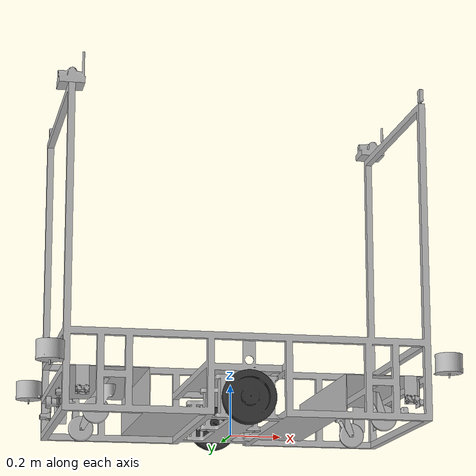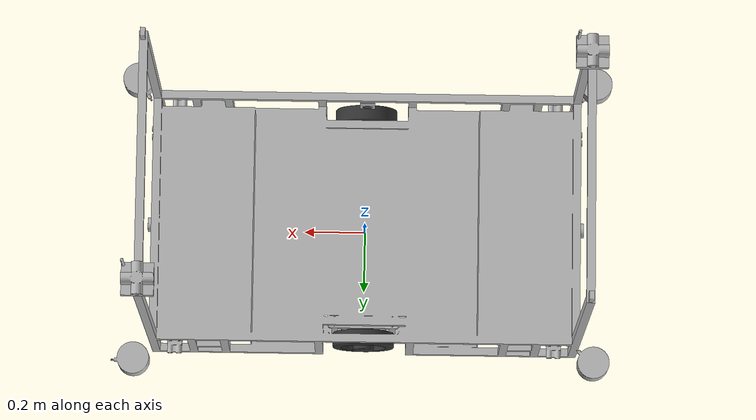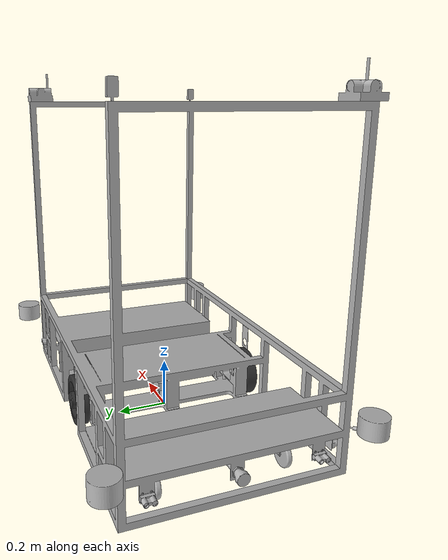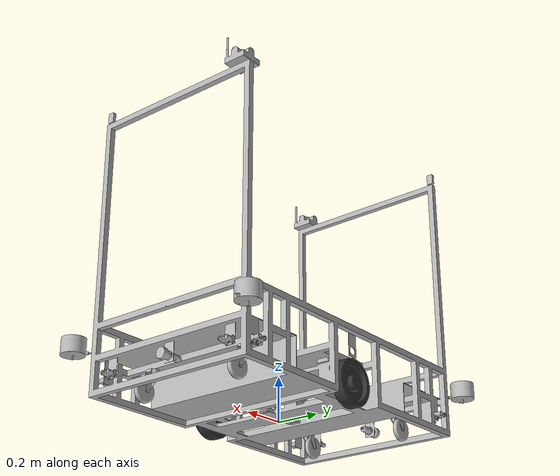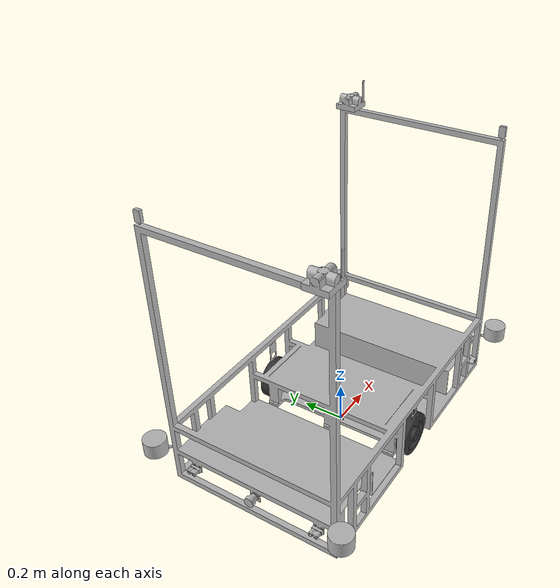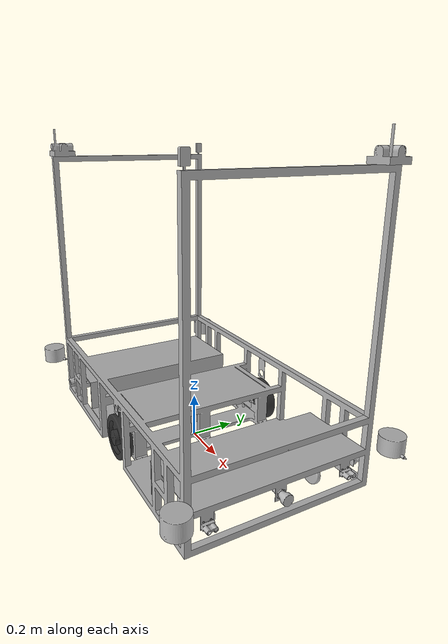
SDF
<sdf version='1.7'>
  <model name='Amr'>
    <link name='Base_Link'>
      <inertial>
        <pose>0.001146 -0.000285 0.281592 0 -0 0</pose>
        <mass>89.323</mass>
        <inertia>
          <ixx>19.1149</ixx>
          <ixy>-1.91693</ixy>
          <ixz>-0.00788105</ixz>
          <iyy>31.6798</iyy>
          <iyz>0.00246327</iyz>
          <izz>30.0072</izz>
        </inertia>
      </inertial>
      <collision name='Base_Link_collision'>
        <pose>0 0 0 0 -0 0</pose>
        <geometry>
          <mesh>
            <scale>1 1 1</scale>
            <uri>model://amr/meshes/Base_Link.STL</uri>
          </mesh>
        </geometry>
      </collision>
      <collision name='Base_Link_fixed_joint_lump__Botton_Ultrasonic_Sensor_Link_collision_1'>
        <pose>-0.72542 -0.00032 0.11209 0 0 -3.14159</pose>
        <geometry>
          <mesh>
            <scale>1 1 1</scale>
            <uri>model://amr/meshes/Botton_Ultrasonic_Sensor_Link.STL</uri>
          </mesh>
        </geometry>
      </collision>
      <collision name='Base_Link_fixed_joint_lump__Front_Ultrasonic_Sensor_Link_collision_3'>
        <pose>0.71919 -0.00032 0.11209 0 -0 0</pose>
        <geometry>
          <mesh>
            <scale>1 1 1</scale>
            <uri>model://amr/meshes/Front_Ultrasonic_Sensor_Link.STL</uri>
          </mesh>
        </geometry>
      </collision>
      <collision name='Base_Link_fixed_joint_lump__IMU_MTI_680g_Link_collision_4'>
        <pose>0 0 0.087925 0 -0 0</pose>
        <geometry>
          <mesh>
            <scale>1 1 1</scale>
            <uri>model://amr/meshes/IMU_MTI_680g_Link.STL</uri>
          </mesh>
        </geometry>
      </collision>
      <collision name='Base_Link_fixed_joint_lump__Left_Bottom_Lidar_Link_collision_5'>
        <pose>-0.71592 -0.31073 0.10293 0 0 -3.14159</pose>
        <geometry>
          <mesh>
            <scale>1 1 1</scale>
            <uri>model://amr/meshes/Left_Bottom_Lidar_Link.STL</uri>
          </mesh>
        </geometry>
      </collision>
      <collision name='Base_Link_fixed_joint_lump__Left_Bottom_Marvel2_Link_collision_6'>
        <pose>-0.69175 -0.36222 1.3186 0 -0 0</pose>
        <geometry>
          <mesh>
            <scale>1 1 1</scale>
            <uri>model://amr/meshes/Left_Bottom_Marvel2_Link.STL</uri>
          </mesh>
        </geometry>
      </collision>
      <collision name='Base_Link_fixed_joint_lump__Left_Bottom_Side_Lidar_Link_collision_7'>
        <pose>-0.62957 -0.42312 0.10293 0 0 -1.5708</pose>
        <geometry>
          <mesh>
            <scale>1 1 1</scale>
            <uri>model://amr/meshes/Left_Bottom_Side_Lidar_Link.STL</uri>
          </mesh>
        </geometry>
      </collision>
      <collision name='Base_Link_fixed_joint_lump__Left_Front_IIDRE2_Link_collision_8'>
        <pose>0.68615 -0.39732 1.3096 0 -0 0</pose>
        <geometry>
          <mesh>
            <scale>1 1 1</scale>
            <uri>model://amr/meshes/Left_Front_IIDRE2_Link.STL</uri>
          </mesh>
        </geometry>
      </collision>
      <collision name='Base_Link_fixed_joint_lump__Left_Front_Lidar_Link_collision_9'>
        <pose>0.70968 -0.3117 0.10293 0 -0 0</pose>
        <geometry>
          <mesh>
            <scale>1 1 1</scale>
            <uri>model://amr/meshes/Left_Front_Lidar_Link.STL</uri>
          </mesh>
        </geometry>
      </collision>
      <collision name='Base_Link_fixed_joint_lump__Left_Front_Side_Lidar_Link_collision_10'>
        <pose>0.62214 -0.42312 0.10293 0 0 -1.5708</pose>
        <geometry>
          <mesh>
            <scale>1 1 1</scale>
            <uri>model://amr/meshes/Left_Front_Side_Lidar_Link.STL</uri>
          </mesh>
        </geometry>
      </collision>
<!-- This crashes gazebo -->
      <collision name='Base_Link_fixed_joint_lump__Right_Bottom_IIDRE1_Link_collision_12'>
        <pose>-0.69172 0.39668 1.3096 0 -0 0</pose>
        <geometry>
          <mesh>
            <scale>1 1 1</scale>
            <uri>model://amr/meshes/Right_Bottom_IIDRE1_Link.STL</uri>
          </mesh>
        </geometry>
      </collision>
      <collision name='Base_Link_fixed_joint_lump__Right_Bottom_Lidar_Link_collision_13'>
        <pose>-0.71592 0.31119 0.10293 0 0 -3.14159</pose>
        <geometry>
          <mesh>
            <scale>1 1 1</scale>
            <uri>model://amr/meshes/Right_Bottom_Lidar_Link.STL</uri>
          </mesh>
        </geometry>
      </collision>
      <collision name='Base_Link_fixed_joint_lump__Right_Bottom_Side_Lidar_Link_collision_14'>
        <pose>-0.62861 0.42248 0.10293 0 -0 1.5708</pose>
        <geometry>
          <mesh>
            <scale>1 1 1</scale>
            <uri>model://amr/meshes/Right_Bottom_Side_Lidar_Link.STL</uri>
          </mesh>
        </geometry>
      </collision>
      <collision name='Base_Link_fixed_joint_lump__Right_Front_Lidar_Link_collision_15'>
        <pose>0.70968 0.31033 0.10293 0 -0 0</pose>
        <geometry>
          <mesh>
            <scale>1 1 1</scale>
            <uri>model://amr/meshes/Right_Front_Lidar_Link.STL</uri>
          </mesh>
        </geometry>
      </collision>
      <collision name='Base_Link_fixed_joint_lump__Right_Front_Marvel1_Link_collision_16'>
        <pose>0.68635 0.36168 1.3186 0 -0 0</pose>
        <geometry>
          <mesh>
            <scale>1 1 1</scale>
            <uri>model://amr/meshes/Right_Front_Marvel1_Link.STL</uri>
          </mesh>
        </geometry>
      </collision>
      <collision name='Base_Link_fixed_joint_lump__Right_Front_Side_Lidar_Link_collision_17'>
        <pose>0.62327 0.42248 0.10293 0 -0 1.5708</pose>
        <geometry>
          <mesh>
            <scale>1 1 1</scale>
            <uri>model://amr/meshes/Right_Front_Side_Lidar_Link.STL</uri>
          </mesh>
        </geometry>
      </collision>
      <!-- This crashes gazebo -->
      <collision name='Base_Link_fixed_joint_lump__Velodyne_Botton_D_Link_collision_19'>
        <pose>-0.7581 -0.4653 0.23012 0 0 -2.3562</pose>
        <geometry>
          <mesh>
            <scale>1 1 1</scale>
            <uri>model://amr/meshes/Velodyne_Botton_D_Link.STL</uri>
          </mesh>
        </geometry>
      </collision>
      <collision name='Base_Link_fixed_joint_lump__Velodyne_Front_D_Link_collision_20'>
        <pose>0.7517 0.46465 0.23012 0 -0 0.7854</pose>
        <geometry>
          <mesh>
            <scale>1 1 1</scale>
            <uri>model://amr/meshes/Velodyne_Front_D_Link.STL</uri>
          </mesh>
        </geometry>
      </collision>
      <visual name='Base_Link_visual'>
        <pose>0 0 0 0 -0 0</pose>
        <geometry>
          <mesh>
            <scale>1 1 1</scale>
            <uri>model://amr/meshes/Base_Link.STL</uri>
          </mesh>
        </geometry>
      </visual>
      <visual name='Base_Link_fixed_joint_lump__Botton_Ultrasonic_Sensor_Link_visual_1'>
        <pose>-0.72542 -0.00032 0.11209 0 0 -3.14159</pose>
        <geometry>
          <mesh>
            <scale>1 1 1</scale>
            <uri>model://amr/meshes/Botton_Ultrasonic_Sensor_Link.STL</uri>
          </mesh>
        </geometry>
      </visual>
      <visual name='Base_Link_fixed_joint_lump__Front_Ultrasonic_Sensor_Link_visual_3'>
        <pose>0.71919 -0.00032 0.11209 0 -0 0</pose>
        <geometry>
          <mesh>
            <scale>1 1 1</scale>
            <uri>model://amr/meshes/Front_Ultrasonic_Sensor_Link.STL</uri>
          </mesh>
        </geometry>
      </visual>
      <visual name='Base_Link_fixed_joint_lump__IMU_MTI_680g_Link_visual_4'>
        <pose>0 0 0.087925 0 -0 0</pose>
        <geometry>
          <mesh>
            <scale>1 1 1</scale>
            <uri>model://amr/meshes/IMU_MTI_680g_Link.STL</uri>
          </mesh>
        </geometry>
      </visual>
      <visual name='Base_Link_fixed_joint_lump__Left_Bottom_Lidar_Link_visual_5'>
        <pose>-0.71592 -0.31073 0.10293 0 0 -3.14159</pose>
        <geometry>
          <mesh>
            <scale>1 1 1</scale>
            <uri>model://amr/meshes/Left_Bottom_Lidar_Link.STL</uri>
          </mesh>
        </geometry>
      </visual>
      <visual name='Base_Link_fixed_joint_lump__Left_Bottom_Marvel2_Link_visual_6'>
        <pose>-0.69175 -0.36222 1.3186 0 -0 0</pose>
        <geometry>
          <mesh>
            <scale>1 1 1</scale>
            <uri>model://amr/meshes/Left_Bottom_Marvel2_Link.STL</uri>
          </mesh>
        </geometry>
      </visual>
      <visual name='Base_Link_fixed_joint_lump__Left_Bottom_Side_Lidar_Link_visual_7'>
        <pose>-0.62957 -0.42312 0.10293 0 0 -1.5708</pose>
        <geometry>
          <mesh>
            <scale>1 1 1</scale>
            <uri>model://amr/meshes/Left_Bottom_Side_Lidar_Link.STL</uri>
          </mesh>
        </geometry>
      </visual>
      <visual name='Base_Link_fixed_joint_lump__Left_Front_IIDRE2_Link_visual_8'>
        <pose>0.68615 -0.39732 1.3096 0 -0 0</pose>
        <geometry>
          <mesh>
            <scale>1 1 1</scale>
            <uri>model://amr/meshes/Left_Front_IIDRE2_Link.STL</uri>
          </mesh>
        </geometry>
      </visual>
      <visual name='Base_Link_fixed_joint_lump__Left_Front_Lidar_Link_visual_9'>
        <pose>0.70968 -0.3117 0.10293 0 -0 0</pose>
        <geometry>
          <mesh>
            <scale>1 1 1</scale>
            <uri>model://amr/meshes/Left_Front_Lidar_Link.STL</uri>
          </mesh>
        </geometry>
      </visual>
      <visual name='Base_Link_fixed_joint_lump__Left_Front_Side_Lidar_Link_visual_10'>
        <pose>0.62214 -0.42312 0.10293 0 0 -1.5708</pose>
        <geometry>
          <mesh>
            <scale>1 1 1</scale>
            <uri>model://amr/meshes/Left_Front_Side_Lidar_Link.STL</uri>
          </mesh>
        </geometry>
      </visual>
      <!-- This crashes gazebo -->
      <visual name='Base_Link_fixed_joint_lump__Right_Bottom_IIDRE1_Link_visual_12'>
        <pose>-0.69172 0.39668 1.3096 0 -0 0</pose>
        <geometry>
          <mesh>
            <scale>1 1 1</scale>
            <uri>model://amr/meshes/Right_Bottom_IIDRE1_Link.STL</uri>
          </mesh>
        </geometry>
      </visual>
      <visual name='Base_Link_fixed_joint_lump__Right_Bottom_Lidar_Link_visual_13'>
        <pose>-0.71592 0.31119 0.10293 0 0 -3.14159</pose>
        <geometry>
          <mesh>
            <scale>1 1 1</scale>
            <uri>model://amr/meshes/Right_Bottom_Lidar_Link.STL</uri>
          </mesh>
        </geometry>
      </visual>
      <visual name='Base_Link_fixed_joint_lump__Right_Bottom_Side_Lidar_Link_visual_14'>
        <pose>-0.62861 0.42248 0.10293 0 -0 1.5708</pose>
        <geometry>
          <mesh>
            <scale>1 1 1</scale>
            <uri>model://amr/meshes/Right_Bottom_Side_Lidar_Link.STL</uri>
          </mesh>
        </geometry>
      </visual>
      <visual name='Base_Link_fixed_joint_lump__Right_Front_Lidar_Link_visual_15'>
        <pose>0.70968 0.31033 0.10293 0 -0 0</pose>
        <geometry>
          <mesh>
            <scale>1 1 1</scale>
            <uri>model://amr/meshes/Right_Front_Lidar_Link.STL</uri>
          </mesh>
        </geometry>
      </visual>
      <visual name='Base_Link_fixed_joint_lump__Right_Front_Marvel1_Link_visual_16'>
        <pose>0.68635 0.36168 1.3186 0 -0 0</pose>
        <geometry>
          <mesh>
            <scale>1 1 1</scale>
            <uri>model://amr/meshes/Right_Front_Marvel1_Link.STL</uri>
          </mesh>
        </geometry>
      </visual>
      <visual name='Base_Link_fixed_joint_lump__Right_Front_Side_Lidar_Link_visual_17'>
        <pose>0.62327 0.42248 0.10293 0 -0 1.5708</pose>
        <geometry>
          <mesh>
            <scale>1 1 1</scale>
            <uri>model://amr/meshes/Right_Front_Side_Lidar_Link.STL</uri>
          </mesh>
        </geometry>
      </visual>
      <!-- This crashes gazebo -->
      <visual name='Base_Link_fixed_joint_lump__Velodyne_Botton_D_Link_visual_19'>
        <pose>-0.7581 -0.4653 0.23012 0 0 -2.3562</pose>
        <geometry>
          <mesh>
            <scale>1 1 1</scale>
            <uri>model://amr/meshes/Velodyne_Botton_D_Link.STL</uri>
          </mesh>
        </geometry>
      </visual>
      <visual name='Base_Link_fixed_joint_lump__Velodyne_Botton_D_Link_visual_20'>
        <pose>-0.753 0.460 0.23012 0 0 2.3706</pose>
        <geometry>
          <mesh>
            <scale>1 1 1</scale>
            <uri>model://amr/meshes/Velodyne_Botton_D_Link.STL</uri>
          </mesh>
        </geometry>
      </visual>
      <visual name='Base_Link_fixed_joint_lump__Velodyne_Front_D_Link_visual_20'>
        <pose>0.7517 0.46465 0.23012 0 -0 3.1415926</pose>
        <geometry>
          <mesh>
            <scale>1 1 1</scale>
            <uri>model://amr/meshes/Velodyne_Front_D_Link.STL</uri>
          </mesh>
        </geometry>
      </visual>
      <visual name='Base_Link_fixed_joint_lump__Velodyne_Front_D_Link_visual_21'>
        <pose>0.7517 -0.46465 0.23012 0 -0 -1.0015926</pose>
        <geometry>
          <mesh>
            <scale>1 1 1</scale>
            <uri>model://amr/meshes/Velodyne_Front_D_Link.STL</uri>
          </mesh>
        </geometry>
      </visual>

      <!--Front Velodyne-->
      <sensor name="sensor_ray_front" type="gpu_lidar">
        <pose>0.743 0.483 0.25657 0 -0 3.1415926</pose>
        <lidar>
          <scan>
            <horizontal>
              <samples>200</samples>
              <resolution>1.0</resolution>
              <min_angle>1.57079</min_angle>
              <max_angle>6.2831</max_angle>
            </horizontal>
          </scan>
          <range>
            <min>0.40</min>
            <max>20.0</max>
          </range>
        </lidar>
        <always_on>true</always_on>
        <visualize>false</visualize>
        <update_rate>20.0</update_rate>
        <topic>scan_front</topic>
        <gz_frame_id>Velodyne_Front_Left_D_Link</gz_frame_id>
      </sensor>

      <!--Front Velodyne-->
      <sensor name="sensor_ray_front_right" type="gpu_lidar">
        <pose>0.742 -0.478 0.23012 0 -0 1.5706</pose>
        <lidar>
          <scan>
            <horizontal>
              <samples>200</samples>
              <resolution>1.0</resolution>
              <min_angle>1.57079</min_angle>
              <max_angle>6.2831</max_angle>
            </horizontal>
          </scan>
          <range>
            <min>0.40</min>
            <max>20.0</max>
          </range>
        </lidar>
        <always_on>true</always_on>
        <visualize>false</visualize>
        <update_rate>20.0</update_rate>
        <topic>scan_front_right</topic>
        <gz_frame_id>Velodyne_Front_Right_D_Link</gz_frame_id>

      </sensor>

      <!-- Rear Velodyne -->
      <sensor name="sensor_ray_rear" type="gpu_lidar">
        <pose>-0.753 0.460 0.23012 0 0 -1.5706</pose>
        <lidar>
          <scan>
            <horizontal>
              <samples>400</samples>
              <resolution>1.0</resolution>
              <min_angle>1.57079</min_angle>
              <max_angle>6.2831</max_angle>
            </horizontal>
          </scan>
          <range>
            <min>0.10</min>
            <max>100.0</max>
          </range>
        </lidar>
        <always_on>true</always_on>
        <visualize>false</visualize>
        <update_rate>20.0</update_rate>
        <topic>scan_back</topic>
        <gz_frame_id>Velodyne_Back_Left_D_Link</gz_frame_id>
      </sensor>

    </link>
    <joint name='Left_Bottom_Beaver_Support_Joint' type='revolute'>
      <pose relative_to='Base_Link'>-0.51312 -0.24632 0.14825 0 -0 0</pose>
      <parent>Base_Link</parent>
      <child>Left_Bottom_Beaver_Support_Link</child>
      <axis>
        <xyz>0 0 1</xyz>
        <limit>
          <lower>-1e+16</lower>
          <upper>1e+16</upper>
        </limit>
        <dynamics>
          <spring_reference>0</spring_reference>
          <spring_stiffness>0</spring_stiffness>
        </dynamics>
      </axis>
    </joint>
    <link name='Left_Bottom_Beaver_Support_Link'>
      <pose relative_to='Left_Bottom_Beaver_Support_Joint'>0 0 0 0 -0 0</pose>
      <inertial>
        <pose>-0.00906 2e-06 -0.024695 0 -0 0</pose>
        <mass>0.0481554</mass>
        <inertia>
          <ixx>4.836e-05</ixx>
          <ixy>1.83618e-09</ixy>
          <ixz>-1.71835e-05</ixz>
          <iyy>5.49517e-05</iyy>
          <iyz>1.0644e-09</iyz>
          <izz>2.50264e-05</izz>
        </inertia>
      </inertial>
      <collision name='Left_Bottom_Beaver_Support_Link_collision'>
        <pose>0 0 0 0 -0 0</pose>
        <geometry>
          <mesh>
            <scale>1 1 1</scale>
            <uri>model://amr/meshes/Left_Bottom_Beaver_Support_Link.STL</uri>
          </mesh>
        </geometry>
      </collision>
      <visual name='Left_Bottom_Beaver_Support_Link_visual'>
        <pose>0 0 0 0 -0 0</pose>
        <geometry>
          <mesh>
            <scale>1 1 1</scale>
            <uri>model://amr/meshes/Left_Bottom_Beaver_Support_Link.STL</uri>
          </mesh>
        </geometry>
      </visual>
    </link>
    <joint name='Left_Bottom_Beaver_Wheel_Joint' type='revolute'>
      <pose relative_to='Left_Bottom_Beaver_Support_Link'>-0.047502 0 -0.098251 0 -0 0</pose>
      <parent>Left_Bottom_Beaver_Support_Link</parent>
      <child>Left_Bottom_Beaver_Wheel_Link</child>
      <axis>
        <xyz>0.000132 1 0</xyz>
        <limit>
          <lower>-1e+16</lower>
          <upper>1e+16</upper>
        </limit>
        <dynamics>
          <spring_reference>0</spring_reference>
          <spring_stiffness>0</spring_stiffness>
        </dynamics>
      </axis>
    </joint>
    <link name='Left_Bottom_Beaver_Wheel_Link'>
      <pose relative_to='Left_Bottom_Beaver_Wheel_Joint'>0 0 0 0 -0 0</pose>
      <inertial>
        <pose>0 0 -0.00145 0 -0 0</pose>
        <mass>0.153627</mass>
        <inertia>
          <ixx>9.92232e-05</ixx>
          <ixy>1.17606e-08</ixy>
          <ixz>-7.86056e-21</ixz>
          <iyy>0.000188468</iyy>
          <iyz>1.12981e-20</iyz>
          <izz>9.92232e-05</izz>
        </inertia>
      </inertial>
      <collision name='Left_Bottom_Beaver_Wheel_Link_collision'>
        <pose>0 0 0 0 -0 0</pose>
        <geometry>
          <mesh>
            <scale>1 1 1</scale>
            <uri>model://amr/meshes/Left_Bottom_Beaver_Wheel_Link.STL</uri>
          </mesh>
        </geometry>
        <surface>
          <friction>
            <ode>
              <mu>1</mu>
              <mu2>1</mu2>
            </ode>
          </friction>
          <contact>
              <ode>
                <max_vel>10</max_vel>
                <min_depth>0.03</min_depth>
              </ode>
          </contact>
        </surface>
      </collision>
      <visual name='Left_Bottom_Beaver_Wheel_Link_visual'>
        <pose>0 0 0 0 -0 0</pose>
        <geometry>
          <mesh>
            <scale>1 1 1</scale>
            <uri>model://amr/meshes/Left_Bottom_Beaver_Wheel_Link.STL</uri>
          </mesh>
        </geometry>
      </visual>
    </link>
    <joint name='Left_Front_Beaver_Support_Joint' type='revolute'>
      <pose relative_to='Base_Link'>0.50688 -0.24632 0.14825 0 -0 0</pose>
      <parent>Base_Link</parent>
      <child>Left_Front_Beaver_Support_Link</child>
      <axis>
        <xyz>0 0 1</xyz>
        <limit>
          <lower>-1e+16</lower>
          <upper>1e+16</upper>
        </limit>
        <dynamics>
          <spring_reference>0</spring_reference>
          <spring_stiffness>0</spring_stiffness>
        </dynamics>
      </axis>
    </joint>
    <link name='Left_Front_Beaver_Support_Link'>
      <pose relative_to='Left_Front_Beaver_Support_Joint'>0 0 0 0 -0 0</pose>
      <inertial>
        <pose>0.00906 6e-06 -0.023245 0 -0 0</pose>
        <mass>0.0481554</mass>
        <inertia>
          <ixx>4.836e-05</ixx>
          <ixy>-3.93419e-09</ixy>
          <ixz>1.71835e-05</ixz>
          <iyy>5.49517e-05</iyy>
          <iyz>1.39766e-08</iyz>
          <izz>2.50264e-05</izz>
        </inertia>
      </inertial>
      <collision name='Left_Front_Beaver_Support_Link_collision'>
        <pose>0 0 0 0 -0 0</pose>
        <geometry>
          <mesh>
            <scale>1 1 1</scale>
            <uri>model://amr/meshes/Left_Front_Beaver_Support_Link.STL</uri>
          </mesh>
        </geometry>
      </collision>
      <visual name='Left_Front_Beaver_Support_Link_visual'>
        <pose>0 0 0 0 -0 0</pose>
        <geometry>
          <mesh>
            <scale>1 1 1</scale>
            <uri>model://amr/meshes/Left_Front_Beaver_Support_Link.STL</uri>
          </mesh>
        </geometry>
      </visual>
    </link>
    <joint name='Left_Front_Beaver_Wheel_Joint' type='revolute'>
      <pose relative_to='Left_Front_Beaver_Support_Link'>0.047493 3.5e-05 -0.098251 0 -0 0</pose>
      <parent>Left_Front_Beaver_Support_Link</parent>
      <child>Left_Front_Beaver_Wheel_Link</child>
      <axis>
        <xyz>0.000744 -1 0</xyz>
        <limit>
          <lower>-1e+16</lower>
          <upper>1e+16</upper>
        </limit>
        <dynamics>
          <spring_reference>0</spring_reference>
          <spring_stiffness>0</spring_stiffness>
        </dynamics>
      </axis>
    </joint>
    <link name='Left_Front_Beaver_Wheel_Link'>
      <pose relative_to='Left_Front_Beaver_Wheel_Joint'>0 0 0 0 -0 0</pose>
      <inertial>
        <pose>9e-06 0 0 0 -0 0</pose>
        <mass>0.153627</mass>
        <inertia>
          <ixx>9.92233e-05</ixx>
          <ixy>-6.63571e-08</ixy>
          <ixz>-5.73727e-21</ixz>
          <iyy>0.000188468</iyy>
          <iyz>1.09207e-20</iyz>
          <izz>9.92232e-05</izz>
        </inertia>
      </inertial>
      <collision name='Left_Front_Beaver_Wheel_Link_collision'>
        <pose>0 0 0 0 -0 0</pose>
        <geometry>
          <mesh>
            <scale>1 1 1</scale>
            <uri>model://amr/meshes/Left_Front_Beaver_Wheel_Link.STL</uri>
          </mesh>
        </geometry>
        <surface>
          <friction>
            <ode>
              <mu>1</mu>
              <mu2>1</mu2>
            </ode>
          </friction>
          <contact>
              <ode>
                <max_vel>10</max_vel>
                <min_depth>0.03</min_depth>
              </ode>
          </contact>
        </surface>
      </collision>
      <visual name='Left_Front_Beaver_Wheel_Link_visual'>
        <pose>0 0 0 0 -0 0</pose>
        <geometry>
          <mesh>
            <scale>1 1 1</scale>
            <uri>model://amr/meshes/Left_Front_Beaver_Wheel_Link.STL</uri>
          </mesh>
        </geometry>
      </visual>
    </link>
    <joint name='Left_Motor_Wheel_Joint' type='revolute'>
      <pose relative_to='Base_Link'>-5.2e-05 -0.3746 0.095 0 -0 0</pose>
      <parent>Base_Link</parent>
      <child>Left_Motor_Wheel_Link</child>
      <axis>
        <xyz>0 1 0</xyz>
        <limit>
          <lower>-1e+16</lower>
          <upper>1e+16</upper>
        </limit>
        <dynamics>
          <spring_reference>0</spring_reference>
          <spring_stiffness>0</spring_stiffness>
        </dynamics>
      </axis>
    </joint>
    <link name='Left_Motor_Wheel_Link'>
      <pose relative_to='Left_Motor_Wheel_Joint'>0 0 0 0 -0 0</pose>
      <inertial>
        <pose>2e-06 -8.3e-05 -1e-06 0 -0 0</pose>
        <mass>1.12665</mass>
        <inertia>
          <ixx>0.00347631</ixx>
          <ixy>-5.08113e-08</ixy>
          <ixz>-5.69038e-09</ixz>
          <iyy>0.00648976</iyy>
          <iyz>1.4165e-08</iyz>
          <izz>0.00347629</izz>
        </inertia>
      </inertial>
      <collision name='Left_Motor_Wheel_Link_collision'>
        <pose>0 0 0 0 -0 0</pose>
        <geometry>
          <mesh>
            <scale>1 1 1</scale>
            <uri>model://amr/meshes/Left_Motor_Wheel_Link.STL</uri>
          </mesh>
        </geometry>
        <surface>
          <friction>
            <ode>
              <mu>1</mu>
              <mu2>1</mu2>
            </ode>
          </friction>
          <contact>
              <ode>
                <max_vel>10</max_vel>
                <min_depth>0.03</min_depth>
              </ode>
          </contact>
        </surface>
      </collision>
      <visual name='Left_Motor_Wheel_Link_visual'>
        <pose>0 0 0 0 -0 0</pose>
        <geometry>
          <mesh>
            <scale>1 1 1</scale>
            <uri>model://amr/meshes/Left_Motor_Wheel_Link.STL</uri>
          </mesh>
        </geometry>
        <material>
          <ambient>0.2 0.2 0.2 1</ambient>
          <diffuse>0.2 0.2 0.2 1</diffuse>
          <specular>0.2 0.2 0.2 1</specular>
        </material>
      </visual>
    </link>
    <joint name='Right_Botton_Beaver_Support_Joint' type='revolute'>
      <pose relative_to='Base_Link'>-0.51312 0.24568 0.14825 0 -0 0</pose>
      <parent>Base_Link</parent>
      <child>Right_Botton_Beaver_Support_Link</child>
      <axis>
        <xyz>0 0 1</xyz>
        <limit>
          <lower>-1e+16</lower>
          <upper>1e+16</upper>
        </limit>
        <dynamics>
          <spring_reference>0</spring_reference>
          <spring_stiffness>0</spring_stiffness>
        </dynamics>
      </axis>
    </joint>
    <link name='Right_Botton_Beaver_Support_Link'>
      <pose relative_to='Right_Botton_Beaver_Support_Joint'>0 0 0 0 -0 0</pose>
      <inertial>
        <pose>-0.00906 2.9e-05 -0.024695 0 -0 0</pose>
        <mass>0.0481554</mass>
        <inertia>
          <ixx>4.83601e-05</ixx>
          <ixy>2.15609e-08</ixy>
          <ixz>-1.71834e-05</ixz>
          <iyy>5.49517e-05</iyy>
          <iyz>5.2481e-08</iyz>
          <izz>2.50264e-05</izz>
        </inertia>
      </inertial>
      <collision name='Right_Botton_Beaver_Support_Link_collision'>
        <pose>0 0 0 0 -0 0</pose>
        <geometry>
          <mesh>
            <scale>1 1 1</scale>
            <uri>model://amr/meshes/Right_Botton_Beaver_Support_Link.STL</uri>
          </mesh>
        </geometry>
      </collision>
      <visual name='Right_Botton_Beaver_Support_Link_visual'>
        <pose>0 0 0 0 -0 0</pose>
        <geometry>
          <mesh>
            <scale>1 1 1</scale>
            <uri>model://amr/meshes/Right_Botton_Beaver_Support_Link.STL</uri>
          </mesh>
        </geometry>
      </visual>
    </link>
    <joint name='Right_Bottom_Beaver_Wheel_Joint' type='revolute'>
      <pose relative_to='Right_Botton_Beaver_Support_Link'>-0.047501 0.000148 -0.098251 0 -0 0</pose>
      <parent>Right_Botton_Beaver_Support_Link</parent>
      <child>Right_Bottom_Beaver_Wheel_Link</child>
      <axis>
        <xyz>0.003124 1 0</xyz>
        <limit>
          <lower>-1e+16</lower>
          <upper>1e+16</upper>
        </limit>
        <dynamics>
          <spring_reference>0</spring_reference>
          <spring_stiffness>0</spring_stiffness>
        </dynamics>
      </axis>
    </joint>
    <link name='Right_Bottom_Beaver_Wheel_Link'>
      <pose relative_to='Right_Bottom_Beaver_Wheel_Joint'>0 0 0 0 -0 0</pose>
      <inertial>
        <pose>-0 0 -0.00145 0 -0 0</pose>
        <mass>0.153627</mass>
        <inertia>
          <ixx>9.92241e-05</ixx>
          <ixy>2.78801e-07</ixy>
          <ixz>8.44309e-21</ixz>
          <iyy>0.000188467</iyy>
          <iyz>-6.81016e-21</iyz>
          <izz>9.92232e-05</izz>
        </inertia>
      </inertial>
      <collision name='Right_Bottom_Beaver_Wheel_Link_collision'>
        <pose>0 0 0 0 -0 0</pose>
        <geometry>
          <mesh>
            <scale>1 1 1</scale>
            <uri>model://amr/meshes/Right_Bottom_Beaver_Wheel_Link.STL</uri>
          </mesh>
        </geometry>
        <surface>
          <friction>
            <ode>
              <mu>1</mu>
              <mu2>1</mu2>
            </ode>
          </friction>
          <contact>
              <ode>
                <max_vel>10</max_vel>
                <min_depth>0.03</min_depth>
              </ode>
          </contact>
        </surface>
      </collision>
      <visual name='Right_Bottom_Beaver_Wheel_Link_visual'>
        <pose>0 0 0 0 -0 0</pose>
        <geometry>
          <mesh>
            <scale>1 1 1</scale>
            <uri>model://amr/meshes/Right_Bottom_Beaver_Wheel_Link.STL</uri>
          </mesh>
        </geometry>
      </visual>
    </link>
    <joint name='Right_Front_Beaver_Support_Joint' type='revolute'>
      <pose relative_to='Base_Link'>0.50688 0.25067 0.14825 0 -0 0</pose>
      <parent>Base_Link</parent>
      <child>Right_Front_Beaver_Support_Link</child>
      <axis>
        <xyz>0 0 1</xyz>
        <limit>
          <lower>-1e+16</lower>
          <upper>1e+16</upper>
        </limit>
        <dynamics>
          <spring_reference>0</spring_reference>
          <spring_stiffness>0</spring_stiffness>
        </dynamics>
      </axis>
    </joint>
    <link name='Right_Front_Beaver_Support_Link'>
      <pose relative_to='Right_Front_Beaver_Support_Joint'>0 0 0 0 -0 0</pose>
      <inertial>
        <pose>0.00906 -0.004984 -0.023245 0 -0 0</pose>
        <mass>0.0481554</mass>
        <inertia>
          <ixx>4.836e-05</ixx>
          <ixy>-8.11788e-09</ixy>
          <ixz>1.71835e-05</ixz>
          <iyy>5.49517e-05</iyy>
          <iyz>2.48822e-08</iyz>
          <izz>2.50264e-05</izz>
        </inertia>
      </inertial>
      <collision name='Right_Front_Beaver_Support_Link_collision'>
        <pose>0 0 0 0 -0 0</pose>
        <geometry>
          <mesh>
            <scale>1 1 1</scale>
            <uri>model://amr/meshes/Right_Front_Beaver_Support_Link.STL</uri>
          </mesh>
        </geometry>
      </collision>
      <visual name='Right_Front_Beaver_Support_Link_visual'>
        <pose>0 0 0 0 -0 0</pose>
        <geometry>
          <mesh>
            <scale>1 1 1</scale>
            <uri>model://amr/meshes/Right_Front_Beaver_Support_Link.STL</uri>
          </mesh>
        </geometry>
      </visual>
    </link>
    <joint name='Right_Front_Beaver_Wheel_Joint' type='revolute'>
      <pose relative_to='Right_Front_Beaver_Support_Link'>0.047501 -0.00493 -0.098251 0 -0 0</pose>
      <parent>Right_Front_Beaver_Support_Link</parent>
      <child>Right_Front_Beaver_Wheel_Link</child>
      <axis>
        <xyz>0.001378 -1 0</xyz>
        <limit>
          <lower>-1e+16</lower>
          <upper>1e+16</upper>
        </limit>
        <dynamics>
          <spring_reference>0</spring_reference>
          <spring_stiffness>0</spring_stiffness>
        </dynamics>
      </axis>
    </joint>
    <link name='Right_Front_Beaver_Wheel_Link'>
      <pose relative_to='Right_Front_Beaver_Wheel_Joint'>0 0 0 0 -0 0</pose>
      <inertial>
        <pose>0 0 0 0 -0 0</pose>
        <mass>0.153627</mass>
        <inertia>
          <ixx>9.92234e-05</ixx>
          <ixy>-1.22997e-07</ixy>
          <ixz>-5.0126e-21</ixz>
          <iyy>0.000188468</iyy>
          <iyz>-1.29241e-20</iyz>
          <izz>9.92232e-05</izz>
        </inertia>
      </inertial>
      <collision name='Right_Front_Beaver_Wheel_Link_collision'>
        <pose>0 0 0 0 -0 0</pose>
        <geometry>
          <mesh>
            <scale>1 1 1</scale>
            <uri>model://amr/meshes/Right_Front_Beaver_Wheel_Link.STL</uri>
          </mesh>
        </geometry>
        <surface>
          <friction>
            <ode>
              <mu>1</mu>
              <mu2>1</mu2>
            </ode>
          </friction>
          <contact>
              <ode>
                <max_vel>10</max_vel>
                <min_depth>0.03</min_depth>
              </ode>
          </contact>
        </surface>
      </collision>
      <visual name='Right_Front_Beaver_Wheel_Link_visual'>
        <pose>0 0 0 0 -0 0</pose>
        <geometry>
          <mesh>
            <scale>1 1 1</scale>
            <uri>model://amr/meshes/Right_Front_Beaver_Wheel_Link.STL</uri>
          </mesh>
        </geometry>
      </visual>
    </link>
    <joint name='Right_Motor_Wheel_Joint' type='revolute'>
      <pose relative_to='Base_Link'>-5.2e-05 0.3746 0.095 0 -0 0</pose>
      <parent>Base_Link</parent>
      <child>Right_Motor_Wheel_Link</child>
      <axis>
        <xyz>0 1 0</xyz>
        <limit>
          <lower>-1e+16</lower>
          <upper>1e+16</upper>
        </limit>
        <dynamics>
          <spring_reference>0</spring_reference>
          <spring_stiffness>0</spring_stiffness>
        </dynamics>
      </axis>
    </joint>
    <link name='Right_Motor_Wheel_Link'>
      <pose relative_to='Right_Motor_Wheel_Joint'>0 0 0 0 -0 0</pose>
      <inertial>
        <pose>-2e-06 8.3e-05 0 0 -0 0</pose>
        <mass>1.12665</mass>
        <inertia>
          <ixx>0.00347631</ixx>
          <ixy>-5.20167e-08</ixy>
          <ixz>-3.60185e-09</ixz>
          <iyy>0.00648976</iyy>
          <iyz>8.75829e-09</iyz>
          <izz>0.00347629</izz>
        </inertia>
      </inertial>
      <collision name='Right_Motor_Wheel_Link_collision'>
        <pose>0 0 0 0 -0 0</pose>
        <geometry>
          <mesh>
            <scale>1 1 1</scale>
            <uri>model://amr/meshes/Right_Motor_Wheel_Link.STL</uri>
          </mesh>
        </geometry>
        <surface>
          <friction>
            <ode>
              <mu>1</mu>
              <mu2>1</mu2>
            </ode>
          </friction>
          <contact>
              <ode>
                <max_vel>10</max_vel>
                <min_depth>0.03</min_depth>
              </ode>
          </contact>
        </surface>
      </collision>
      <visual name='Right_Motor_Wheel_Link_visual'>
        <pose>0 0 0 0 -0 0</pose>
        <geometry>
          <mesh>
            <scale>1 1 1</scale>
            <uri>model://amr/meshes/Right_Motor_Wheel_Link.STL</uri>
          </mesh>
        </geometry>
        <material>
          <ambient>0.2 0.2 0.2 1</ambient>
          <diffuse>0.2 0.2 0.2 1</diffuse>
          <specular>0.2 0.2 0.2 1</specular>
        </material>
      </visual>
    </link>

    <plugin filename="gz-sim-joint-state-publisher-system" name="gz::sim::systems::JointStatePublisher">
      <topic>joint_states</topic>
      <joint_name>Right_Motor_Wheel_Joint</joint_name> <!--motor direita-->
      <joint_name>Left_Motor_Wheel_Joint</joint_name> <!--motor esquerda-->

    </plugin>

    <plugin filename='gz-sim-diff-drive-system' name="gz::sim::systems::DiffDrive" >

        <!-- wheels -->
      <left_joint>Right_Motor_Wheel_Joint</left_joint>
      <right_joint>Left_Motor_Wheel_Joint</right_joint>

      <!-- kinematics -->
      <wheel_separation>0.750</wheel_separation>
      <wheel_radius>0.100</wheel_radius>
      <odom_publish_frequency>1</odom_publish_frequency>
      <topic>cmd_vel</topic>
      <max_linear_acceleration>1</max_linear_acceleration>
      <min_linear_acceleration>-1</min_linear_acceleration>
      <max_angular_acceleration>2</max_angular_acceleration>
      <min_angular_acceleration>-2</min_angular_acceleration>
      <max_linear_velocity>0.5</max_linear_velocity>
      <min_linear_velocity>-0.5</min_linear_velocity>
      <max_angular_velocity>1</max_angular_velocity>
      <min_angular_velocity>-1</min_angular_velocity>

    </plugin>

    <link name="IMU_MTI_680g_Link">
      <sensor name="snoopy_imu" type="imu">
        <always_on>true</always_on>
        <update_rate>100</update_rate>
        <topic>imu</topic>
        <imu>
          <angular_velocity>
            <x>
              <noise type="gaussian">
                <mean>0.0</mean>
                <stddev>2e-3</stddev>
              </noise>
            </x>
            <y>
              <noise type="gaussian">
                <mean>0.0</mean>
                <stddev>2e-3</stddev>
              </noise>
            </y>
            <z>
              <noise type="gaussian">
                <mean>0.0</mean>
                <stddev>3e-3</stddev>
              </noise>
            </z>
          </angular_velocity>
          <linear_acceleration>
            <x>
              <noise type="gaussian">
                <mean>0.0</mean>
                <stddev>1.7e-2</stddev>
              </noise>
            </x>
            <y>
              <noise type="gaussian">
                <mean>0.0</mean>
                <stddev>1.7e-2</stddev>
              </noise>
            </y>
            <z>
              <noise type="gaussian">
                <mean>0.0</mean>
                <stddev>1.7e-2</stddev>
              </noise>
            </z>
          </linear_acceleration>
        </imu>
      </sensor>
    </link>

    <joint name="imu_joint" type="fixed">
      <parent>Base_Link</parent>
      <child>IMU_MTI_680g_Link</child>
      <pose>-0.032 0 0.068 0 0 0</pose>
      <axis>
        <xyz>0 0 1</xyz>
      </axis>
    </joint>

    <!-- 3D Position Interface for Ground Truth -->

  </model>
</sdf>
